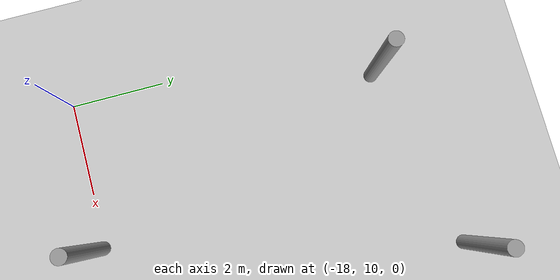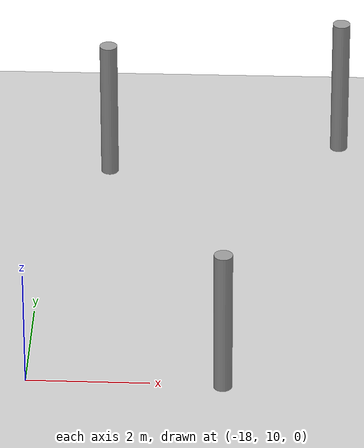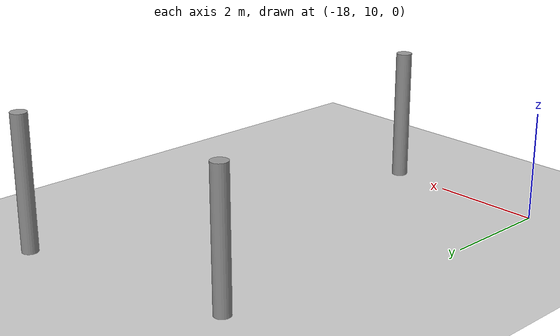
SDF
<sdf version="1.7">
 <world name="default">
  <model name="ground_plane">
   <static>1</static>
   <link name="link">
    <collision name="collision">
     <geometry><plane><normal>0 0 1</normal><size>100 100</size></plane></geometry>
     <surface><friction><ode><mu>100</mu><mu2>50</mu2></ode></friction></surface>
    </collision>
    <visual name="visual">
     <cast_shadows>0</cast_shadows>
     <geometry><plane><normal>0 0 1</normal><size>100 100</size></plane></geometry>
     <material>
      <script><uri>file://media/materials/scripts/gazebo.material</uri><name>Gazebo/Grey</name></script>
     </material>
    </visual>
   </link>
  </model>
  <model name="pillar30_clone_12">
   <link name="link">
    <inertial>
     <mass>1</mass>
     <inertia><ixx>0.145833</ixx><ixy>0</ixy><ixz>0</ixz><iyy>0.145833</iyy><iyz>0</iyz><izz>0.125</izz></inertia>
    </inertial>
    <kinematic>1</kinematic>
    <visual name="visual">
     <geometry><cylinder><radius>0.15</radius><length>2.5</length></cylinder></geometry>
     <material>
      <script><name>Gazebo/Grey</name><uri>file://media/materials/scripts/gazebo.material</uri></script>
      <shader type="pixel"><normal_map>__default__</normal_map></shader>
      <ambient>0.3 0.3 0.3 1</ambient>
      <diffuse>0.7 0.7 0.7 1</diffuse>
      <specular>0.01 0.01 0.01 1</specular>
      <emissive>0 0 0 1</emissive>
     </material>
    </visual>
    <collision name="collision">
     <geometry><cylinder><radius>0.15</radius><length>2.5</length></cylinder></geometry>
     <surface>
      <friction>
       <ode><mu>1</mu><mu2>1</mu2><fdir1>0 0 0</fdir1><slip1>0</slip1><slip2>0</slip2></ode>
       <torsional>
        <coefficient>1</coefficient>
        <patch_radius>0</patch_radius>
        <surface_radius>0</surface_radius>
        <use_patch_radius>1</use_patch_radius>
        <ode><slip>0</slip></ode>
       </torsional>
      </friction>
      <bounce><restitution_coefficient>0</restitution_coefficient><threshold>1e+06</threshold></bounce>
      <contact>
       <collide_without_contact>0</collide_without_contact>
       <collide_without_contact_bitmask>1</collide_without_contact_bitmask>
       <collide_bitmask>1</collide_bitmask>
       <ode>
        <soft_cfm>0</soft_cfm>
        <soft_erp>0.2</soft_erp>
        <kp>1e+13</kp>
        <kd>1</kd>
        <max_vel>0.01</max_vel>
        <min_depth>0</min_depth>
       </ode>
       <bullet>
        <split_impulse>1</split_impulse>
        <split_impulse_penetration_threshold>-0.01</split_impulse_penetration_threshold>
        <soft_cfm>0</soft_cfm>
        <soft_erp>0.2</soft_erp>
        <kp>1e+13</kp>
        <kd>1</kd>
       </bullet>
      </contact>
     </surface>
    </collision>
   </link>
   <static>0</static>
   <pose>-14.8322 9.95336 1.25 0 0 -8.9e-05</pose>
  </model>
  <model name="pillar30_clone_13">
   <link name="link">
    <inertial>
     <mass>1</mass>
     <inertia><ixx>0.145833</ixx><ixy>0</ixy><ixz>0</ixz><iyy>0.145833</iyy><iyz>0</iyz><izz>0.125</izz></inertia>
    </inertial>
    <kinematic>1</kinematic>
    <visual name="visual">
     <geometry><cylinder><radius>0.15</radius><length>2.5</length></cylinder></geometry>
     <material>
      <script><name>Gazebo/Grey</name><uri>file://media/materials/scripts/gazebo.material</uri></script>
      <shader type="pixel"><normal_map>__default__</normal_map></shader>
      <ambient>0.3 0.3 0.3 1</ambient>
      <diffuse>0.7 0.7 0.7 1</diffuse>
      <specular>0.01 0.01 0.01 1</specular>
      <emissive>0 0 0 1</emissive>
     </material>
    </visual>
    <collision name="collision">
     <geometry><cylinder><radius>0.15</radius><length>2.5</length></cylinder></geometry>
     <surface>
      <friction>
       <ode><mu>1</mu><mu2>1</mu2><fdir1>0 0 0</fdir1><slip1>0</slip1><slip2>0</slip2></ode>
       <torsional>
        <coefficient>1</coefficient>
        <patch_radius>0</patch_radius>
        <surface_radius>0</surface_radius>
        <use_patch_radius>1</use_patch_radius>
        <ode><slip>0</slip></ode>
       </torsional>
      </friction>
      <bounce><restitution_coefficient>0</restitution_coefficient><threshold>1e+06</threshold></bounce>
      <contact>
       <collide_without_contact>0</collide_without_contact>
       <collide_without_contact_bitmask>1</collide_without_contact_bitmask>
       <collide_bitmask>1</collide_bitmask>
       <ode>
        <soft_cfm>0</soft_cfm>
        <soft_erp>0.2</soft_erp>
        <kp>1e+13</kp>
        <kd>1</kd>
        <max_vel>0.01</max_vel>
        <min_depth>0</min_depth>
       </ode>
       <bullet>
        <split_impulse>1</split_impulse>
        <split_impulse_penetration_threshold>-0.01</split_impulse_penetration_threshold>
        <soft_cfm>0</soft_cfm>
        <soft_erp>0.2</soft_erp>
        <kp>1e+13</kp>
        <kd>1</kd>
       </bullet>
      </contact>
     </surface>
    </collision>
   </link>
   <static>0</static>
   <pose>-17 16.4927 1.25 0 0 -8.9e-05</pose>
  </model>
  <model name="pillar30_clone_14">
   <link name="link">
    <inertial>
     <mass>1</mass>
     <inertia><ixx>0.145833</ixx><ixy>0</ixy><ixz>0</ixz><iyy>0.145833</iyy><iyz>0</iyz><izz>0.125</izz></inertia>
    </inertial>
    <kinematic>1</kinematic>
    <visual name="visual">
     <geometry><cylinder><radius>0.15</radius><length>2.5</length></cylinder></geometry>
     <material>
      <script><name>Gazebo/Grey</name><uri>file://media/materials/scripts/gazebo.material</uri></script>
      <shader type="pixel"><normal_map>__default__</normal_map></shader>
      <ambient>0.3 0.3 0.3 1</ambient>
      <diffuse>0.7 0.7 0.7 1</diffuse>
      <specular>0.01 0.01 0.01 1</specular>
      <emissive>0 0 0 1</emissive>
     </material>
    </visual>
    <collision name="collision">
     <geometry><cylinder><radius>0.15</radius><length>2.5</length></cylinder></geometry>
     <surface>
      <friction>
       <ode><mu>1</mu><mu2>1</mu2><fdir1>0 0 0</fdir1><slip1>0</slip1><slip2>0</slip2></ode>
       <torsional>
        <coefficient>1</coefficient>
        <patch_radius>0</patch_radius>
        <surface_radius>0</surface_radius>
        <use_patch_radius>1</use_patch_radius>
        <ode><slip>0</slip></ode>
       </torsional>
      </friction>
      <bounce><restitution_coefficient>0</restitution_coefficient><threshold>1e+06</threshold></bounce>
      <contact>
       <collide_without_contact>0</collide_without_contact>
       <collide_without_contact_bitmask>1</collide_without_contact_bitmask>
       <collide_bitmask>1</collide_bitmask>
       <ode>
        <soft_cfm>0</soft_cfm>
        <soft_erp>0.2</soft_erp>
        <kp>1e+13</kp>
        <kd>1</kd>
        <max_vel>0.01</max_vel>
        <min_depth>0</min_depth>
       </ode>
       <bullet>
        <split_impulse>1</split_impulse>
        <split_impulse_penetration_threshold>-0.01</split_impulse_penetration_threshold>
        <soft_cfm>0</soft_cfm>
        <soft_erp>0.2</soft_erp>
        <kp>1e+13</kp>
        <kd>1</kd>
       </bullet>
      </contact>
     </surface>
    </collision>
   </link>
   <static>0</static>
   <pose>-13 17.401 1.25 0 0 -8.9e-05</pose>
  </model>
 </world>
</sdf>
